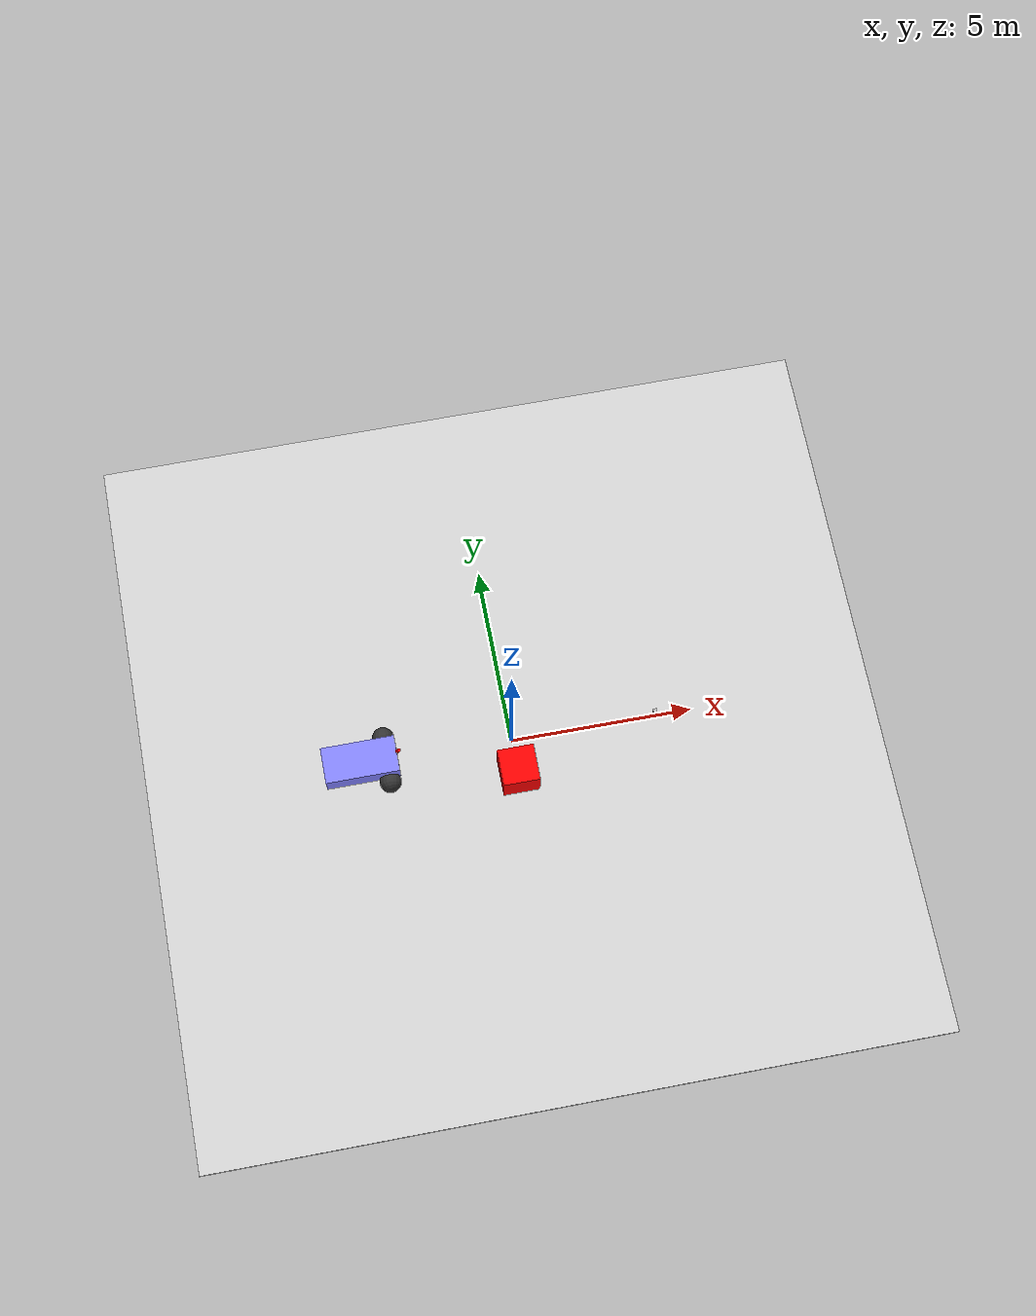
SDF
<sdf version="1.10">
 <world name="visualize_lidar_world">
  <physics name="1ms" type="ignored">
   <max_step_size>0.001</max_step_size>
   <real_time_factor>1.0</real_time_factor>
  </physics>
  <plugin filename="gz-sim-physics-system" name="gz::sim::systems::Physics"/>
  <plugin filename="gz-sim-sensors-system" name="gz::sim::systems::Sensors">
   <render_engine>ogre2</render_engine>
  </plugin>
  <plugin filename="gz-sim-scene-broadcaster-system" name="gz::sim::systems::SceneBroadcaster"/>
  <light type="directional" name="sun">
   <pose>0 0 10 0 0 0</pose>
   <diffuse>0.8 0.8 0.8 1</diffuse>
   <specular>0.2 0.2 0.2 1</specular>
   <attenuation>
    <range>1000</range>
    <constant>0.9</constant>
    <linear>0.01</linear>
    <quadratic>0.001</quadratic>
   </attenuation>
   <direction>-0.5 0.1 -0.9</direction>
  </light>
  <model name="ground_plane">
   <static>true</static>
   <link name="link">
    <collision name="collision"><geometry><box><size>20 20 0.1</size></box></geometry></collision>
    <visual name="visual">
     <geometry><box><size>20 20 0.1</size></box></geometry>
     <material>
      <ambient>0.8 0.8 0.8 1</ambient>
      <diffuse>0.8 0.8 0.8 1</diffuse>
      <specular>0.8 0.8 0.8 1</specular>
     </material>
    </visual>
   </link>
  </model>
  <model name="box">
   <pose>0 -1 0.5 0 0 0</pose>
   <link name="box_link">
    <inertial>
     <inertia><ixx>1</ixx><ixy>0</ixy><ixz>0</ixz><iyy>1</iyy><iyz>0</iyz><izz>1</izz></inertia>
     <mass>1.0</mass>
    </inertial>
    <collision name="box_collision"><geometry><box><size>1 1 1</size></box></geometry></collision>
    <visual name="box_visual">
     <geometry><box><size>1 1 1</size></box></geometry>
     <material><ambient>1 0 0 1</ambient><diffuse>1 0 0 1</diffuse><specular>1 0 0 1</specular></material>
    </visual>
   </link>
  </model>
  <model name="model_with_lidar">
   <pose>4 0 0.5 0 0.0 3.14</pose>
   <link name="link">
    <pose>0.05 0.05 0.05 0 0 0</pose>
    <inertial>
     <mass>0.1</mass>
     <inertia><ixx>0.000166667</ixx><iyy>0.000166667</iyy><izz>0.000166667</izz></inertia>
    </inertial>
    <collision name="collision"><geometry><box><size>0.1 0.1 0.1</size></box></geometry></collision>
    <visual name="visual"><geometry><box><size>0.1 0.1 0.1</size></box></geometry></visual>
    <sensor name="gpu_lidar" type="gpu_lidar">
     <topic>lidar</topic>
     <update_rate>10</update_rate>
     <lidar>
      <scan>
       <horizontal>
        <samples>640</samples>
        <resolution>1</resolution>
        <min_angle>-1.396263</min_angle>
        <max_angle>1.396263</max_angle>
       </horizontal>
       <vertical>
        <samples>16</samples>
        <resolution>1</resolution>
        <min_angle>-0.261799</min_angle>
        <max_angle>0.261799</max_angle>
       </vertical>
      </scan>
      <range><min>0.08</min><max>10.0</max><resolution>0.01</resolution></range>
     </lidar>
     <visualize>true</visualize>
    </sensor>
   </link>
   <static>true</static>
  </model>
  <model name="vehicle_blue">
   <pose>-4 0 0.325 0 0 0.0</pose>
   <link name="chassis">
    <pose>-0.151427 -0 0.175 0 -0 0</pose>
    <inertial>
     <mass>1.14395</mass>
     <inertia>
      <ixx>0.126164</ixx>
      <ixy>0</ixy>
      <ixz>0</ixz>
      <iyy>0.416519</iyy>
      <iyz>0</iyz>
      <izz>0.481014</izz>
     </inertia>
    </inertial>
    <visual name="visual">
     <geometry><box><size>2.01142 1 0.568726</size></box></geometry>
     <material>
      <ambient>0.5 0.5 1.0 1</ambient>
      <diffuse>0.5 0.5 1.0 1</diffuse>
      <specular>0.0 0.0 1.0 1</specular>
     </material>
    </visual>
    <collision name="collision"><geometry><box><size>2.01142 1 0.568726</size></box></geometry></collision>
   </link>
   <link name="lidar_link">
    <pose>0.9 0 0.6 0 0.575959 0</pose>
    <inertial>
     <mass>0.1</mass>
     <inertia><ixx>0.000166667</ixx><iyy>0.000166667</iyy><izz>0.000166667</izz></inertia>
    </inertial>
    <collision name="collision">
     <geometry><cylinder><radius>0.05</radius><length>0.1</length></cylinder></geometry>
    </collision>
    <visual name="visual">
     <geometry><cylinder><radius>0.05</radius><length>0.1</length></cylinder></geometry>
     <material><ambient>1 0 0 1</ambient><diffuse>1 0 0 1</diffuse></material>
    </visual>
    <sensor name="gpu_lidar" type="gpu_lidar">
     <topic>lidar2</topic>
     <update_rate>20</update_rate>
     <lidar>
      <scan>
       <horizontal>
        <samples>1024</samples>
        <resolution>0.35</resolution>
        <min_angle>-1.396263</min_angle>
        <max_angle>1.396263</max_angle>
       </horizontal>
       <vertical>
        <samples>16</samples>
        <resolution>1</resolution>
        <min_angle>-0.261799</min_angle>
        <max_angle>0.261799</max_angle>
       </vertical>
      </scan>
      <range><min>0.08</min><max>10.0</max><resolution>0.01</resolution></range>
     </lidar>
     <visualize>true</visualize>
    </sensor>
   </link>
   <link name="left_wheel">
    <pose>0.554283 0.625029 -0.025 -1.5707 0 0</pose>
    <inertial>
     <mass>2</mass>
     <inertia><ixx>0.145833</ixx><ixy>0</ixy><ixz>0</ixz><iyy>0.145833</iyy><iyz>0</iyz><izz>0.125</izz></inertia>
    </inertial>
    <visual name="visual">
     <geometry><sphere><radius>0.3</radius></sphere></geometry>
     <material>
      <ambient>0.2 0.2 0.2 1</ambient>
      <diffuse>0.2 0.2 0.2 1</diffuse>
      <specular>0.2 0.2 0.2 1</specular>
     </material>
    </visual>
    <collision name="collision"><geometry><sphere><radius>0.3</radius></sphere></geometry></collision>
   </link>
   <link name="right_wheel">
    <pose>0.554282 -0.625029 -0.025 -1.5707 0 0</pose>
    <inertial>
     <mass>2</mass>
     <inertia><ixx>0.145833</ixx><ixy>0</ixy><ixz>0</ixz><iyy>0.145833</iyy><iyz>0</iyz><izz>0.125</izz></inertia>
    </inertial>
    <visual name="visual">
     <geometry><sphere><radius>0.3</radius></sphere></geometry>
     <material>
      <ambient>0.2 0.2 0.2 1</ambient>
      <diffuse>0.2 0.2 0.2 1</diffuse>
      <specular>0.2 0.2 0.2 1</specular>
     </material>
    </visual>
    <collision name="collision"><geometry><sphere><radius>0.3</radius></sphere></geometry></collision>
   </link>
   <link name="caster">
    <pose>-0.957138 -0 -0.125 0 -0 0</pose>
    <inertial>
     <mass>1</mass>
     <inertia><ixx>0.1</ixx><ixy>0</ixy><ixz>0</ixz><iyy>0.1</iyy><iyz>0</iyz><izz>0.1</izz></inertia>
    </inertial>
    <visual name="visual">
     <geometry><sphere><radius>0.2</radius></sphere></geometry>
     <material>
      <ambient>0.2 0.2 0.2 1</ambient>
      <diffuse>0.2 0.2 0.2 1</diffuse>
      <specular>0.2 0.2 0.2 1</specular>
     </material>
    </visual>
    <collision name="collision"><geometry><sphere><radius>0.2</radius></sphere></geometry></collision>
   </link>
   <joint name="lidar_sensor_joint" type="fixed"><parent>chassis</parent><child>lidar_link</child></joint>
   <joint name="left_wheel_joint" type="revolute">
    <parent>chassis</parent>
    <child>left_wheel</child>
    <axis><xyz>0 0 1</xyz><limit><lower>-1.79769e+308</lower><upper>1.79769e+308</upper></limit></axis>
   </joint>
   <joint name="right_wheel_joint" type="revolute">
    <parent>chassis</parent>
    <child>right_wheel</child>
    <axis><xyz>0 0 1</xyz><limit><lower>-1.79769e+308</lower><upper>1.79769e+308</upper></limit></axis>
   </joint>
   <joint name="caster_wheel" type="ball"><parent>chassis</parent><child>caster</child></joint>
   <plugin filename="gz-sim-diff-drive-system" name="gz::sim::systems::DiffDrive">
    <left_joint>left_wheel_joint</left_joint>
    <right_joint>right_wheel_joint</right_joint>
    <wheel_separation>1.25</wheel_separation>
    <wheel_radius>0.3</wheel_radius>
    <odom_publish_frequency>1</odom_publish_frequency>
   </plugin>
  </model>
 </world>
</sdf>
